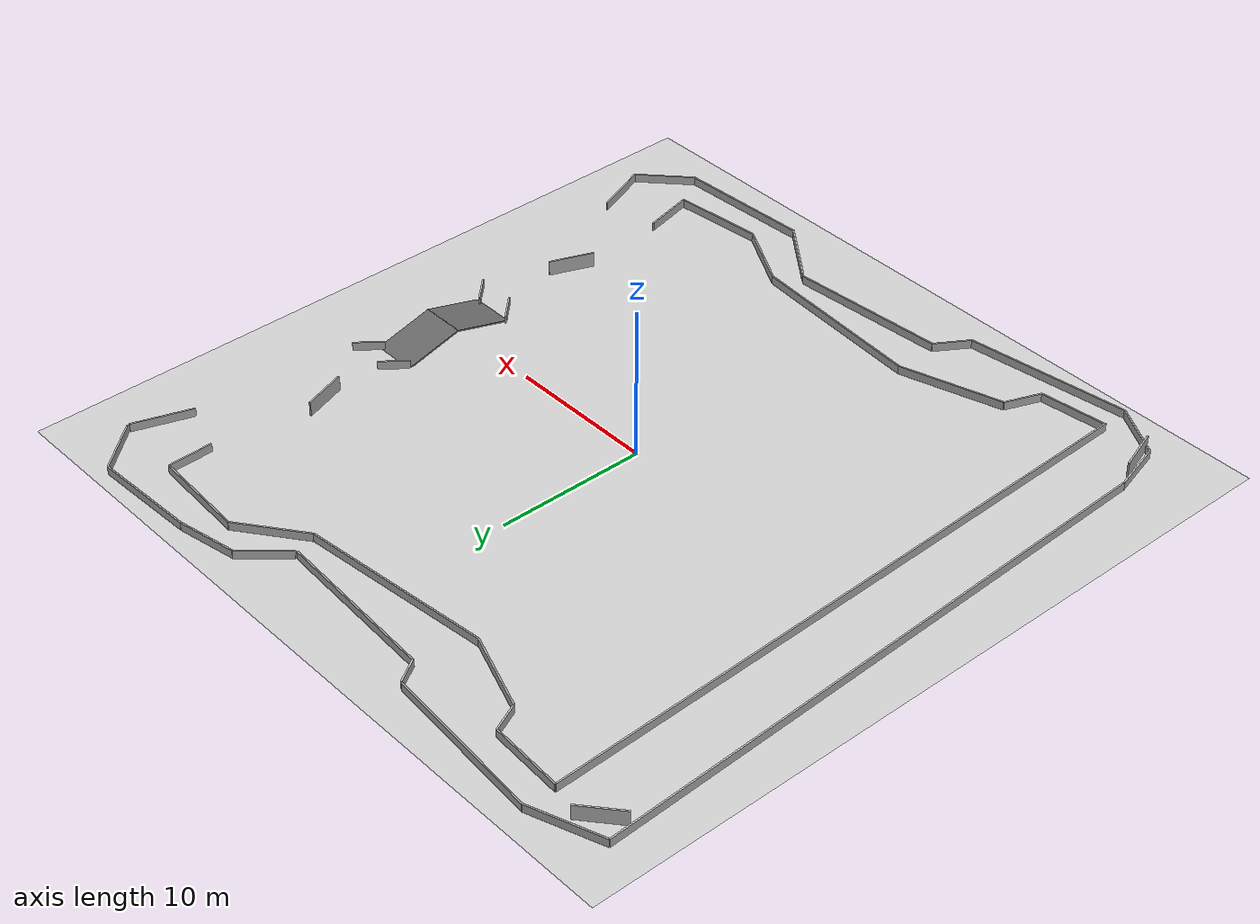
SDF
<sdf version="1.6">
 <world name="default">
  <model name="igvc_basic_ground">
   <static>1</static>
   <link name="link">
    <collision name="collision">
     <geometry><plane><normal>0 0 1</normal><size>50 50</size></plane></geometry>
     <surface><friction><ode><mu>100</mu><mu2>50</mu2></ode></friction></surface>
    </collision>
    <visual name="visual">
     <cast_shadows>0</cast_shadows>
     <geometry><plane><normal>0 0 1</normal><size>50 50</size></plane></geometry>
     <material>
      <script>
       <uri>model://igvc_basic_ground/materials/scripts</uri>
       <uri>model://igvc_basic_ground/materials/textures</uri>
       <name>igvc_lanes/Image</name>
      </script>
     </material>
    </visual>
    <velocity_decay><linear>0</linear><angular>0</angular></velocity_decay>
   </link>
  </model>
  <light name="sun" type="directional">
   <pose>0 0 10 0 -0 0</pose>
   <diffuse>1.0 1.0 1.0 1</diffuse>
   <specular>0.2 0.2 0.2 1</specular>
   <attenuation>
    <range>1000</range>
    <constant>0.9</constant>
    <linear>0.01</linear>
    <quadratic>0.001</quadratic>
   </attenuation>
   <direction>-0.5 0.1 -0.9</direction>
  </light>
  <light name="additional_light_1" type="directional">
   <pose>0 0 30 0 -0 0</pose>
   <diffuse>1.0 1.0 1.0 1</diffuse>
   <specular>0.2 0.2 0.2 1</specular>
   <attenuation>
    <range>1000</range>
    <constant>0.9</constant>
    <linear>0.01</linear>
    <quadratic>0.001</quadratic>
   </attenuation>
   <direction>-0.5 0.1 -0.9</direction>
  </light>
  <light name="additional_light_2" type="directional">
   <pose>0 0 50 0 -0 0</pose>
   <diffuse>0.8 0.8 0.8 1</diffuse>
   <specular>0.2 0.2 0.2 1</specular>
   <attenuation>
    <range>1000</range>
    <constant>0.9</constant>
    <linear>0.01</linear>
    <quadratic>0.001</quadratic>
   </attenuation>
   <direction>-0.5 0.1 -0.9</direction>
  </light>
  <physics name="default_physics" default="0" type="ode">
   <max_step_size>0.001</max_step_size>
   <real_time_factor>1</real_time_factor>
   <real_time_update_rate>1000</real_time_update_rate>
  </physics>
  <scene><ambient>1.0 1.0 1.0 1</ambient><background>0.7 0.7 0.7 1</background><shadows>1</shadows></scene>
  <spherical_coordinates>
   <surface_model>EARTH_WGS84</surface_model>
   <latitude_deg>0</latitude_deg>
   <longitude_deg>0</longitude_deg>
   <elevation>0</elevation>
   <heading_deg>0</heading_deg>
  </spherical_coordinates>
  <model name="outer_wall_1">
   <static>1</static>
   <pose>1.0 -20.0 0 0 -0 0.075</pose>
   <link name="link">
    <collision name="collision"><geometry><box><size>10.5 0.1 1</size></box></geometry></collision>
    <visual name="visual"><geometry><box><size>10.5 0.1 1</size></box></geometry></visual>
   </link>
  </model>
  <model name="outer_wall_2">
   <static>1</static>
   <pose>-4.9 -21.45 0 -0 0 1.0</pose>
   <link name="link">
    <collision name="collision"><geometry><box><size>2.5 0.1 1</size></box></geometry></collision>
    <visual name="visual"><geometry><box><size>2.5 0.1 1</size></box></geometry></visual>
   </link>
  </model>
  <model name="outer_wall_3">
   <static>1</static>
   <pose>-11.0 -23.25 0 0 -0 0.14</pose>
   <link name="link">
    <collision name="collision"><geometry><box><size>11.0 0.1 1</size></box></geometry></collision>
    <visual name="visual"><geometry><box><size>11.0 0.1 1</size></box></geometry></visual>
   </link>
  </model>
  <model name="outer_wall_4">
   <static>1</static>
   <pose>-18.2 -23.06 0 0 -0 -0.5</pose>
   <link name="link">
    <collision name="collision"><geometry><box><size>4 0.1 1</size></box></geometry></collision>
    <visual name="visual"><geometry><box><size>4 0.1 1</size></box></geometry></visual>
   </link>
  </model>
  <model name="outer_wall_5">
   <static>1</static>
   <pose>-20.42 -20.41 0 0 -0 -1.3</pose>
   <link name="link">
    <collision name="collision"><geometry><box><size>3.5 0.1 1</size></box></geometry></collision>
    <visual name="visual"><geometry><box><size>3.5 0.1 1</size></box></geometry></visual>
   </link>
  </model>
  <model name="outer_wall_6">
   <static>1</static>
   <pose>-21.71 1.51 0 0 -0 -1.53</pose>
   <link name="link">
    <collision name="collision"><geometry><box><size>40.5 0.1 1</size></box></geometry></collision>
    <visual name="visual"><geometry><box><size>40.5 0.1 1</size></box></geometry></visual>
   </link>
  </model>
  <model name="outer_wall_7">
   <static>1</static>
   <pose>-20.18 22.58 0 0 -0 -2.8</pose>
   <link name="link">
    <collision name="collision"><geometry><box><size>5 0.1 1</size></box></geometry></collision>
    <visual name="visual"><geometry><box><size>5 0.1 1</size></box></geometry></visual>
   </link>
  </model>
  <model name="outer_wall_8">
   <static>1</static>
   <pose>-12.34 22.96 0 0 -0 -3.225</pose>
   <link name="link">
    <collision name="collision"><geometry><box><size>11 0.1 1</size></box></geometry></collision>
    <visual name="visual"><geometry><box><size>11 0.1 1</size></box></geometry></visual>
   </link>
  </model>
  <model name="outer_wall_9">
   <static>1</static>
   <pose>-6.3 21.7 0 0 -0 -4.15</pose>
   <link name="link">
    <collision name="collision"><geometry><box><size>1.8 0.1 1</size></box></geometry></collision>
    <visual name="visual"><geometry><box><size>1.8 0.1 1</size></box></geometry></visual>
   </link>
  </model>
  <model name="outer_wall_10">
   <static>1</static>
   <pose>-0.18 20.65 0 0 -0 -3.20</pose>
   <link name="link">
    <collision name="collision"><geometry><box><size>11.25 0.1 1</size></box></geometry></collision>
    <visual name="visual"><geometry><box><size>11.25 0.1 1</size></box></geometry></visual>
   </link>
  </model>
  <model name="outer_wall_11">
   <static>1</static>
   <pose>6.7 21.69 0 0 -0 -2.3</pose>
   <link name="link">
    <collision name="collision"><geometry><box><size>3.5 0.1 1</size></box></geometry></collision>
    <visual name="visual"><geometry><box><size>3.5 0.1 1</size></box></geometry></visual>
   </link>
  </model>
  <model name="outer_wall_12">
   <static>1</static>
   <pose>9.83 23.37 0 0 -0 -2.95</pose>
   <link name="link">
    <collision name="collision"><geometry><box><size>4 0.1 1</size></box></geometry></collision>
    <visual name="visual"><geometry><box><size>4 0.1 1</size></box></geometry></visual>
   </link>
  </model>
  <model name="outer_wall_13">
   <static>1</static>
   <pose>15.29 23.90 0 0 -0 -3.1</pose>
   <link name="link">
    <collision name="collision"><geometry><box><size>7 0.1 1</size></box></geometry></collision>
    <visual name="visual"><geometry><box><size>7 0.1 1</size></box></geometry></visual>
   </link>
  </model>
  <model name="outer_wall_14">
   <static>1</static>
   <pose>20.09 22.53 0 0 -0 -4.0</pose>
   <link name="link">
    <collision name="collision"><geometry><box><size>4 0.1 1</size></box></geometry></collision>
    <visual name="visual"><geometry><box><size>4 0.1 1</size></box></geometry></visual>
   </link>
  </model>
  <model name="outer_wall_15">
   <static>1</static>
   <pose>20.75 19.0 0 0 -0 -1.9</pose>
   <link name="link">
    <collision name="collision"><geometry><box><size>4 0.1 1</size></box></geometry></collision>
    <visual name="visual"><geometry><box><size>4 0.1 1</size></box></geometry></visual>
   </link>
  </model>
  <model name="outer_wall_16">
   <static>1</static>
   <pose>18.7 5.35 0 0 -0 0.9</pose>
   <link name="link">
    <collision name="collision"><geometry><box><size>2 0.1 1</size></box></geometry></collision>
    <visual name="visual"><geometry><box><size>2 0.1 1</size></box></geometry></visual>
   </link>
  </model>
  <model name="outer_wall_17">
   <static>1</static>
   <pose>18.64 -3.45 0 0 -0 -0.8</pose>
   <link name="link">
    <collision name="collision"><geometry><box><size>2 0.1 1</size></box></geometry></collision>
    <visual name="visual"><geometry><box><size>2 0.1 1</size></box></geometry></visual>
   </link>
  </model>
  <model name="outer_wall_18">
   <static>1</static>
   <pose>21.6 -17.75 0 0 -0 1.94</pose>
   <link name="link">
    <collision name="collision"><geometry><box><size>4 0.1 1</size></box></geometry></collision>
    <visual name="visual"><geometry><box><size>4 0.1 1</size></box></geometry></visual>
   </link>
  </model>
  <model name="outer_wall_19">
   <static>1</static>
   <pose>20.86 -20.98 0 0 -0 0.75</pose>
   <link name="link">
    <collision name="collision"><geometry><box><size>4 0.1 1</size></box></geometry></collision>
    <visual name="visual"><geometry><box><size>4 0.1 1</size></box></geometry></visual>
   </link>
  </model>
  <model name="outer_wall_20">
   <static>1</static>
   <pose>14.9 -22.57 0 0 -0 0.05</pose>
   <link name="link">
    <collision name="collision"><geometry><box><size>9 0.1 1</size></box></geometry></collision>
    <visual name="visual"><geometry><box><size>9 0.1 1</size></box></geometry></visual>
   </link>
  </model>
  <model name="outer_wall_21">
   <static>1</static>
   <pose>8.41 -21.28 0 0 -0 -0.65</pose>
   <link name="link">
    <collision name="collision"><geometry><box><size>5 0.1 1</size></box></geometry></collision>
    <visual name="visual"><geometry><box><size>5 0.1 1</size></box></geometry></visual>
   </link>
  </model>
  <model name="inner_wall_1">
   <static>1</static>
   <pose>16.12 5.4 0 0 -0 0.9</pose>
   <link name="link">
    <collision name="collision"><geometry><box><size>2 0.1 1</size></box></geometry></collision>
    <visual name="visual"><geometry><box><size>2 0.1 1</size></box></geometry></visual>
   </link>
  </model>
  <model name="inner_wall_2">
   <static>1</static>
   <pose>16 -3.4 0 0 -0 -0.8</pose>
   <link name="link">
    <collision name="collision"><geometry><box><size>2 0.1 1</size></box></geometry></collision>
    <visual name="visual"><geometry><box><size>2 0.1 1</size></box></geometry></visual>
   </link>
  </model>
  <model name="inner_wall_3">
   <static>1</static>
   <pose>17.46 -18.25 0 0 -0 1.8</pose>
   <link name="link">
    <collision name="collision"><geometry><box><size>3.5 0.1 1</size></box></geometry></collision>
    <visual name="visual"><geometry><box><size>3.5 0.1 1</size></box></geometry></visual>
   </link>
  </model>
  <model name="inner_wall_4">
   <static>1</static>
   <pose>14.87 -20.25 0 0 -0 0.1</pose>
   <link name="link">
    <collision name="collision"><geometry><box><size>6 0.1 1</size></box></geometry></collision>
    <visual name="visual"><geometry><box><size>6 0.1 1</size></box></geometry></visual>
   </link>
  </model>
  <model name="inner_wall_5">
   <static>1</static>
   <pose>9.69 -19.35 0 0 -0 -0.5</pose>
   <link name="link">
    <collision name="collision"><geometry><box><size>5 0.1 1</size></box></geometry></collision>
    <visual name="visual"><geometry><box><size>5 0.1 1</size></box></geometry></visual>
   </link>
  </model>
  <model name="inner_wall_6">
   <static>1</static>
   <pose>1.5 -17.67 0 0 -0 -0.08</pose>
   <link name="link">
    <collision name="collision"><geometry><box><size>12 0.1 1</size></box></geometry></collision>
    <visual name="visual"><geometry><box><size>12 0.1 1</size></box></geometry></visual>
   </link>
  </model>
  <model name="inner_wall_7">
   <static>1</static>
   <pose>-7.82 -18.22 0 0 -0 0.3</pose>
   <link name="link">
    <collision name="collision"><geometry><box><size>7 0.1 1</size></box></geometry></collision>
    <visual name="visual"><geometry><box><size>7 0.1 1</size></box></geometry></visual>
   </link>
  </model>
  <model name="inner_wall_8">
   <static>1</static>
   <pose>-11.62 -20.42 0 0 -0 1.2</pose>
   <link name="link">
    <collision name="collision"><geometry><box><size>2.5 0.1 1</size></box></geometry></collision>
    <visual name="visual"><geometry><box><size>2.5 0.1 1</size></box></geometry></visual>
   </link>
  </model>
  <model name="inner_wall_9">
   <static>1</static>
   <pose>-14.31 -21.85 0 0 -0 0.12</pose>
   <link name="link">
    <collision name="collision"><geometry><box><size>4.5 0.1 1</size></box></geometry></collision>
    <visual name="visual"><geometry><box><size>4.5 0.1 1</size></box></geometry></visual>
   </link>
  </model>
  <model name="inner_wall_10">
   <static>1</static>
   <pose>-17.20 -0.45 0 0 -0 -1.54</pose>
   <link name="link">
    <collision name="collision"><geometry><box><size>43.5 0.1 1</size></box></geometry></collision>
    <visual name="visual"><geometry><box><size>43.5 0.1 1</size></box></geometry></visual>
   </link>
  </model>
  <model name="inner_wall_11">
   <static>1</static>
   <pose>-15.37 21.14 0 0 -0 -3.2</pose>
   <link name="link">
    <collision name="collision"><geometry><box><size>5 0.1 1</size></box></geometry></collision>
    <visual name="visual"><geometry><box><size>5 0.1 1</size></box></geometry></visual>
   </link>
  </model>
  <model name="inner_wall_12">
   <static>1</static>
   <pose>-12.46 20.08 0 0 -0 2</pose>
   <link name="link">
    <collision name="collision"><geometry><box><size>2 0.1 1</size></box></geometry></collision>
    <visual name="visual"><geometry><box><size>2 0.1 1</size></box></geometry></visual>
   </link>
  </model>
  <model name="inner_wall_13">
   <static>1</static>
   <pose>-9.45 18.25 0 0 -0 2.8</pose>
   <link name="link">
    <collision name="collision"><geometry><box><size>5.5 0.1 1</size></box></geometry></collision>
    <visual name="visual"><geometry><box><size>5.5 0.1 1</size></box></geometry></visual>
   </link>
  </model>
  <model name="inner_wall_14">
   <static>1</static>
   <pose>-0.4 18.03 0 0 -0 3.25</pose>
   <link name="link">
    <collision name="collision"><geometry><box><size>13 0.1 1</size></box></geometry></collision>
    <visual name="visual"><geometry><box><size>13 0.1 1</size></box></geometry></visual>
   </link>
  </model>
  <model name="inner_wall_15">
   <static>1</static>
   <pose>8.06 20.23 0 0 -0 -2.5</pose>
   <link name="link">
    <collision name="collision"><geometry><box><size>5 0.1 1</size></box></geometry></collision>
    <visual name="visual"><geometry><box><size>5 0.1 1</size></box></geometry></visual>
   </link>
  </model>
  <model name="inner_wall_16">
   <static>1</static>
   <pose>13.31 21.54 0 0 -0 -3.2</pose>
   <link name="link">
    <collision name="collision"><geometry><box><size>6.5 0.1 1</size></box></geometry></collision>
    <visual name="visual"><geometry><box><size>6.5 0.1 1</size></box></geometry></visual>
   </link>
  </model>
  <model name="inner_wall_17">
   <static>1</static>
   <pose>16.60 19.85 0 0 -0 1.6</pose>
   <link name="link">
    <collision name="collision"><geometry><box><size>3 0.1 1</size></box></geometry></collision>
    <visual name="visual"><geometry><box><size>3 0.1 1</size></box></geometry></visual>
   </link>
  </model>
  <model name="barricade_1">
   <static>1</static>
   <pose>16.0 10.65 0.5 0 -0 1.9</pose>
   <link name="link">
    <collision name="collision"><geometry><box><size>3 0.1 1</size></box></geometry></collision>
    <visual name="visual"><geometry><box><size>3 0.1 1</size></box></geometry></visual>
   </link>
  </model>
  <model name="barricade_2">
   <static>1</static>
   <pose>17.0 -9.5 0.5 0 -0 1.2</pose>
   <link name="link">
    <collision name="collision"><geometry><box><size>3 0.1 1</size></box></geometry></collision>
    <visual name="visual"><geometry><box><size>3 0.1 1</size></box></geometry></visual>
   </link>
  </model>
  <model name="barricade_3">
   <static>1</static>
   <pose>-19.8 -21.17 0.5 0 -0 1.9</pose>
   <link name="link">
    <collision name="collision"><geometry><box><size>3 0.1 1</size></box></geometry></collision>
    <visual name="visual"><geometry><box><size>3 0.1 1</size></box></geometry></visual>
   </link>
  </model>
  <model name="barricade_4">
   <static>1</static>
   <pose>-21 21 0.5 0 -0 0.7</pose>
   <link name="link">
    <collision name="collision"><geometry><box><size>3 0.1 1</size></box></geometry></collision>
    <visual name="visual"><geometry><box><size>3 0.1 1</size></box></geometry></visual>
   </link>
  </model>
  <model name="ramp_up">
   <static>1</static>
   <pose>17 -2 0.15 0.2612 -0 0</pose>
   <link name="link">
    <collision name="collision"><geometry><box><size>3 6 0.1</size></box></geometry></collision>
    <visual name="visual">
     <geometry><box><size>3 6 0.1</size></box></geometry>
     <material>
      <ambient>0.4 0.7 0.6 1</ambient>
      <specular>0.2 0.2 0.2 64</specular>
      <diffuse>0.4 0.4 0.4 1</diffuse>
     </material>
    </visual>
   </link>
  </model>
  <model name="ramp_down">
   <static>1</static>
   <pose>17 3.75 0.15 0.2612 -0 3.14</pose>
   <link name="link">
    <collision name="collision"><geometry><box><size>3 6 0.1</size></box></geometry></collision>
    <visual name="visual">
     <geometry><box><size>3 6 0.1</size></box></geometry>
     <material>
      <ambient>0.4 0.7 0.6 1</ambient>
      <specular>0.2 0.2 0.2 64</specular>
      <diffuse>0.4 0.4 0.4 1</diffuse>
     </material>
    </visual>
   </link>
  </model>
  <gravity>0 0 -9.8</gravity>
  <magnetic_field>6e-06 2.3e-05 -4.2e-05</magnetic_field>
  <atmosphere type="adiabatic"/>
  <audio><device>default</device></audio>
 </world>
</sdf>
